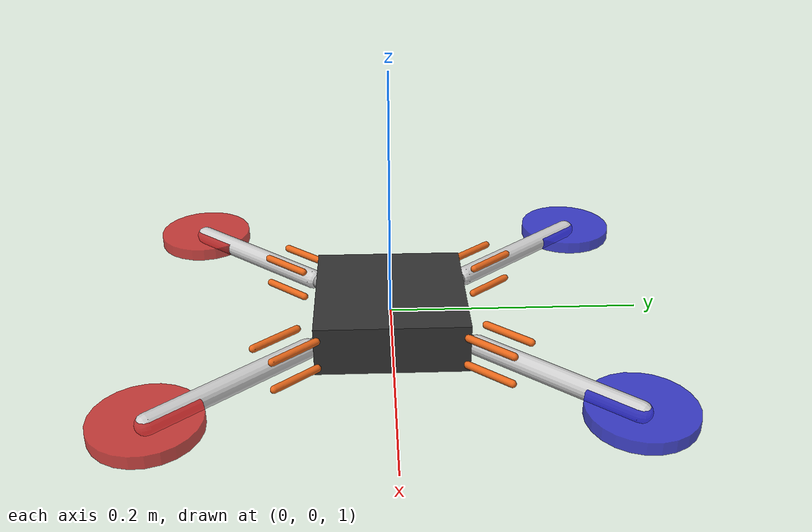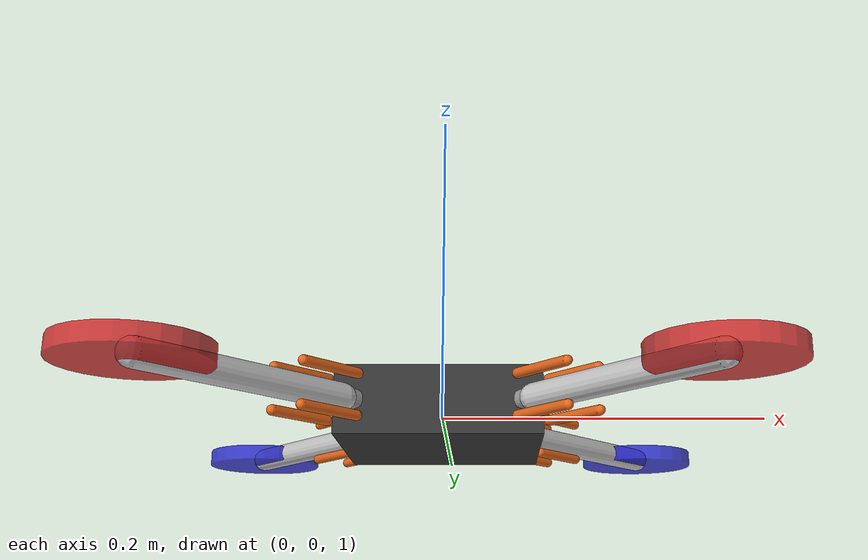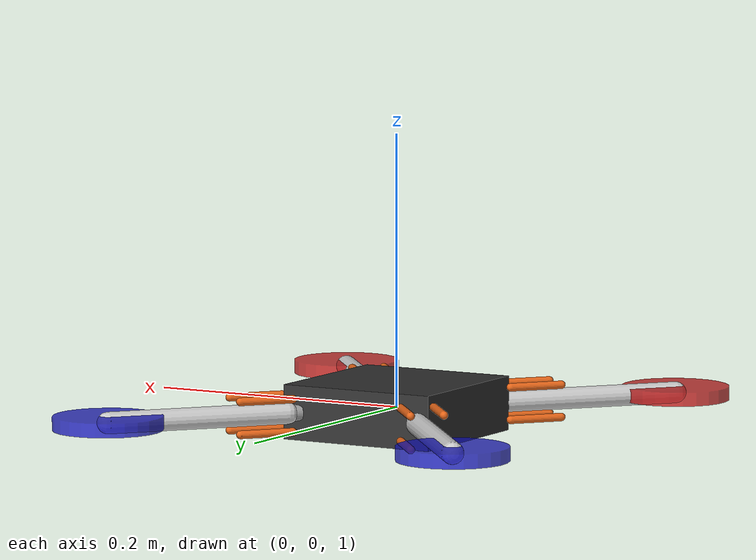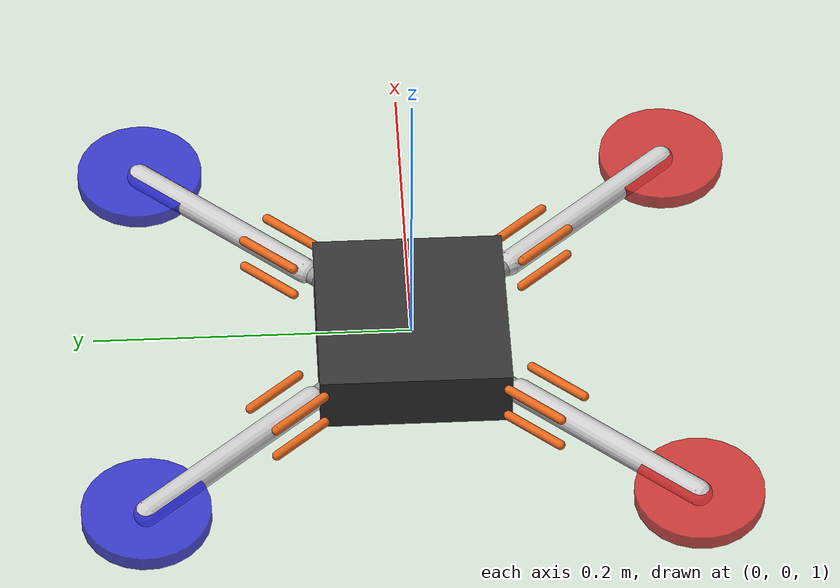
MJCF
<mujoco model="HoLoArm Quadrotor">
  <compiler angle="radian"/>
  <option timestep="0.002" gravity="0 0 -9.81"/>

  <default>
    <geom friction="0.5 0.1 0.01" solref="0.02 1"/>
    <joint limited="true"/>
  </default>

  <asset>
    <texture name="grid" type="2d" builtin="checker" rgb1="0.2 0.3 0.4" rgb2="0.1 0.2 0.3" width="512" height="512" mark="edge"/>
    <material name="gridmat" texture="grid" texuniform="true" texrepeat="5 5" reflectance="0.2"/>
  </asset>

  <worldbody>
    <light name="light" pos="0 0 3"/>
    <geom name="floor" type="plane" size="0 0 0.05" material="gridmat"/>

    <body name="holoarm_core" pos="0 0 1.0">
      <freejoint name="drone_freejoint"/>
      <geom type="box" size="0.06 0.06 0.02" mass="0.41" rgba="0.2 0.2 0.2 1"/>
      <site name="imu" pos="0 0 0"/>

      <body name="fl_base" pos="0.054 0.065 0" euler="0 0 0.8723">
        <geom type="cylinder" size="0.006 0.01" mass="0.02" rgba="0.6 0.6 0.6 1" euler="0 1.5708 0"/>
        <geom type="capsule" size="0.003 0.02" pos="0.02 0.012 0.012" euler="0 1.5708 0" rgba="0.9 0.4 0.1 1"/>
        <geom type="capsule" size="0.003 0.02" pos="0.02 -0.012 0.012" euler="0 1.5708 0" rgba="0.9 0.4 0.1 1"/>
        <geom type="capsule" size="0.003 0.02" pos="0.02 0.012 -0.012" euler="0 1.5708 0" rgba="0.9 0.4 0.1 1"/>
        <geom type="capsule" size="0.003 0.02" pos="0.02 -0.012 -0.012" euler="0 1.5708 0" rgba="0.9 0.4 0.1 1"/>

        <joint name="fl_bend_pitch" type="hinge" axis="0 1 0" stiffness="50" damping="5.0" range="-0.55 0.55"/>
        <joint name="fl_bend_yaw" type="hinge" axis="0 0 1" stiffness="50" damping="5.0" range="-0.55 0.55"/>

        <body name="fl_arm_sliding" pos="0 0 0">
          <joint name="fl_slide" type="slide" axis="1 0 0" stiffness="800" damping="15" range="-0.004 0.001"/>
          <geom type="capsule" size="0.008 0.068" pos="0.068 0 0" euler="0 1.5708 0" mass="0.07" rgba="0.8 0.8 0.8 1"/>
          <body name="fl_motor" pos="0.136 0 0">
            <geom type="cylinder" size="0.04 0.005" mass="0.05" rgba="0.1 0.1 0.8 0.8"/>
            <site name="thrust_fl" pos="0 0 0"/>
          </body>
        </body>
      </body>

      <body name="fr_base" pos="0.054 -0.065 0" euler="0 0 -0.8723">
        <geom type="cylinder" size="0.006 0.01" mass="0.02" rgba="0.6 0.6 0.6 1" euler="0 1.5708 0"/>
        <geom type="capsule" size="0.003 0.02" pos="0.02 0.012 0.012" euler="0 1.5708 0" rgba="0.9 0.4 0.1 1"/>
        <geom type="capsule" size="0.003 0.02" pos="0.02 -0.012 0.012" euler="0 1.5708 0" rgba="0.9 0.4 0.1 1"/>
        <geom type="capsule" size="0.003 0.02" pos="0.02 0.012 -0.012" euler="0 1.5708 0" rgba="0.9 0.4 0.1 1"/>
        <geom type="capsule" size="0.003 0.02" pos="0.02 -0.012 -0.012" euler="0 1.5708 0" rgba="0.9 0.4 0.1 1"/>

        <joint name="fr_bend_pitch" type="hinge" axis="0 1 0" stiffness="50" damping="5.0" range="-0.55 0.55"/>
        <joint name="fr_bend_yaw" type="hinge" axis="0 0 1" stiffness="50" damping="5.0" range="-0.55 0.55"/>
        <body name="fr_arm_sliding" pos="0 0 0">
          <joint name="fr_slide" type="slide" axis="1 0 0" stiffness="800" damping="15" range="-0.004 0.001"/>
          <geom type="capsule" size="0.008 0.068" pos="0.068 0 0" euler="0 1.5708 0" mass="0.07" rgba="0.8 0.8 0.8 1"/>
          <body name="fr_motor" pos="0.136 0 0">
            <geom type="cylinder" size="0.04 0.005" mass="0.05" rgba="0.8 0.1 0.1 0.8"/>
            <site name="thrust_fr" pos="0 0 0"/>
          </body>
        </body>
      </body>

      <body name="rl_base" pos="-0.054 0.065 0" euler="0 0 2.2693">
        <geom type="cylinder" size="0.006 0.01" mass="0.02" rgba="0.6 0.6 0.6 1" euler="0 1.5708 0"/>
        <geom type="capsule" size="0.003 0.02" pos="0.02 0.012 0.012" euler="0 1.5708 0" rgba="0.9 0.4 0.1 1"/>
        <geom type="capsule" size="0.003 0.02" pos="0.02 -0.012 0.012" euler="0 1.5708 0" rgba="0.9 0.4 0.1 1"/>
        <geom type="capsule" size="0.003 0.02" pos="0.02 0.012 -0.012" euler="0 1.5708 0" rgba="0.9 0.4 0.1 1"/>
        <geom type="capsule" size="0.003 0.02" pos="0.02 -0.012 -0.012" euler="0 1.5708 0" rgba="0.9 0.4 0.1 1"/>

        <joint name="rl_bend_pitch" type="hinge" axis="0 1 0" stiffness="50" damping="5.0" range="-0.55 0.55"/>
        <joint name="rl_bend_yaw" type="hinge" axis="0 0 1" stiffness="50" damping="5.0" range="-0.55 0.55"/>
        <body name="rl_arm_sliding" pos="0 0 0">
          <joint name="rl_slide" type="slide" axis="1 0 0" stiffness="800" damping="15" range="-0.004 0.001"/>
          <geom type="capsule" size="0.008 0.068" pos="0.068 0 0" euler="0 1.5708 0" mass="0.07" rgba="0.8 0.8 0.8 1"/>
          <body name="rl_motor" pos="0.136 0 0">
             <geom type="cylinder" size="0.04 0.005" mass="0.05" rgba="0.1 0.1 0.8 0.8"/>
            <site name="thrust_rl" pos="0 0 0"/>
          </body>
        </body>
      </body>

      <body name="rr_base" pos="-0.054 -0.065 0" euler="0 0 -2.2693">
        <geom type="cylinder" size="0.006 0.01" mass="0.02" rgba="0.6 0.6 0.6 1" euler="0 1.5708 0"/>
        <geom type="capsule" size="0.003 0.02" pos="0.02 0.012 0.012" euler="0 1.5708 0" rgba="0.9 0.4 0.1 1"/>
        <geom type="capsule" size="0.003 0.02" pos="0.02 -0.012 0.012" euler="0 1.5708 0" rgba="0.9 0.4 0.1 1"/>
        <geom type="capsule" size="0.003 0.02" pos="0.02 0.012 -0.012" euler="0 1.5708 0" rgba="0.9 0.4 0.1 1"/>
        <geom type="capsule" size="0.003 0.02" pos="0.02 -0.012 -0.012" euler="0 1.5708 0" rgba="0.9 0.4 0.1 1"/>

        <joint name="rr_bend_pitch" type="hinge" axis="0 1 0" stiffness="50" damping="5.0" range="-0.55 0.55"/>
        <joint name="rr_bend_yaw" type="hinge" axis="0 0 1" stiffness="50" damping="5.0" range="-0.55 0.55"/>
        <body name="rr_arm_sliding" pos="0 0 0">
          <joint name="rr_slide" type="slide" axis="1 0 0" stiffness="800" damping="15" range="-0.004 0.001"/>
          <geom type="capsule" size="0.008 0.068" pos="0.068 0 0" euler="0 1.5708 0" mass="0.07" rgba="0.8 0.8 0.8 1"/>
          <body name="rr_motor" pos="0.136 0 0">
            <geom type="cylinder" size="0.04 0.005" mass="0.05" rgba="0.8 0.1 0.1 0.8"/>
            <site name="thrust_rr" pos="0 0 0"/>
          </body>
        </body>
      </body>

    </body>
  </worldbody>

  <actuator>
    <general name="motor_fl" site="thrust_fl" gear="0 0 1 0 0 -0.02" ctrlrange="0 10"/>
    <general name="motor_fr" site="thrust_fr" gear="0 0 1 0 0  0.02" ctrlrange="0 10"/>
    <general name="motor_rl" site="thrust_rl" gear="0 0 1 0 0  0.02" ctrlrange="0 10"/>
    <general name="motor_rr" site="thrust_rr" gear="0 0 1 0 0 -0.02" ctrlrange="0 10"/>
  </actuator>

</mujoco>
